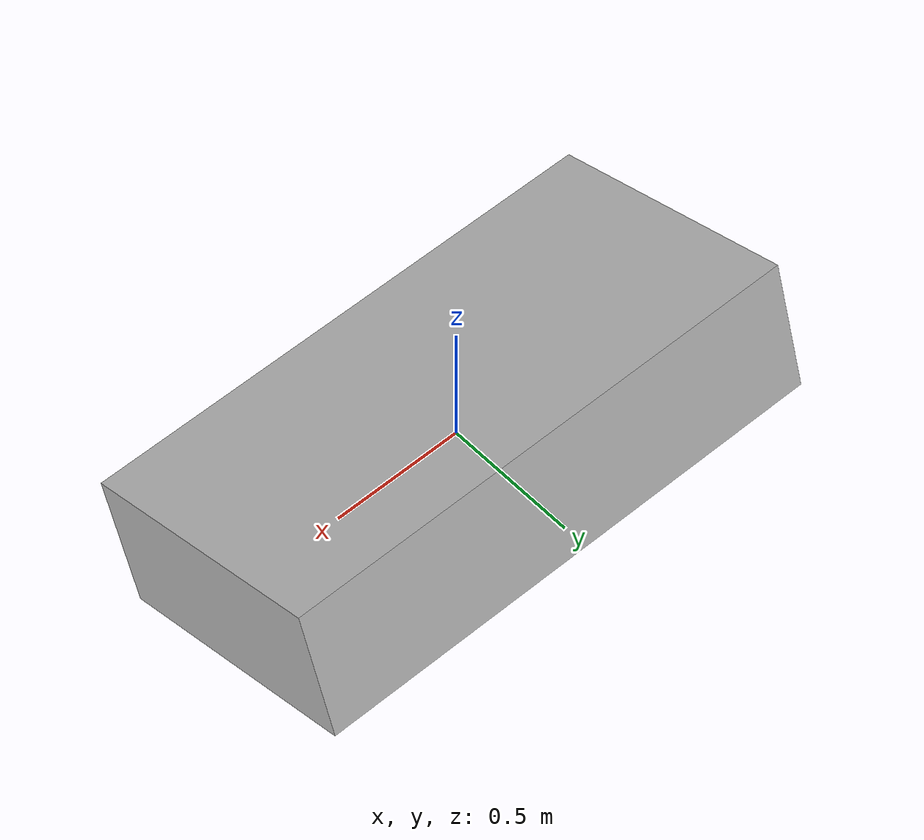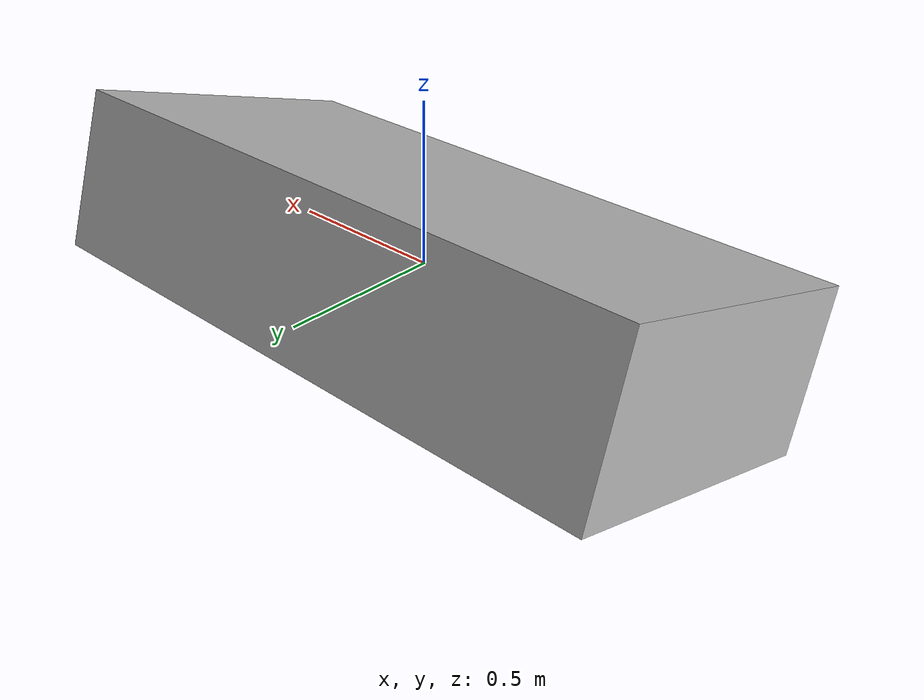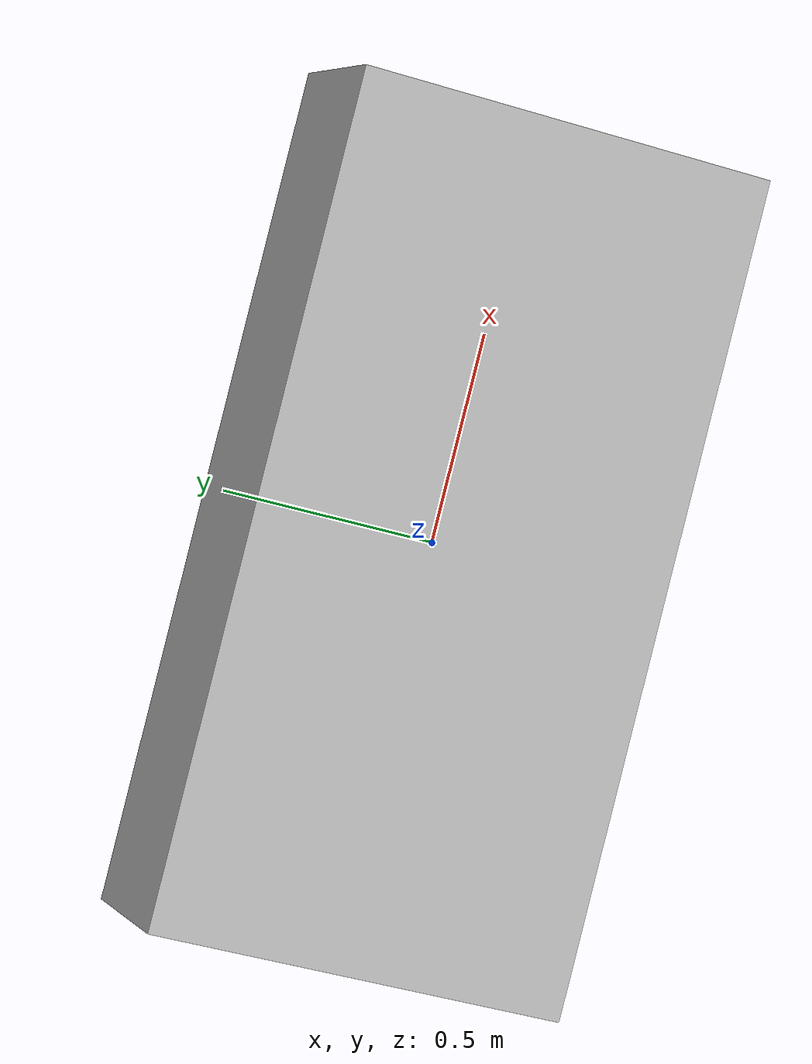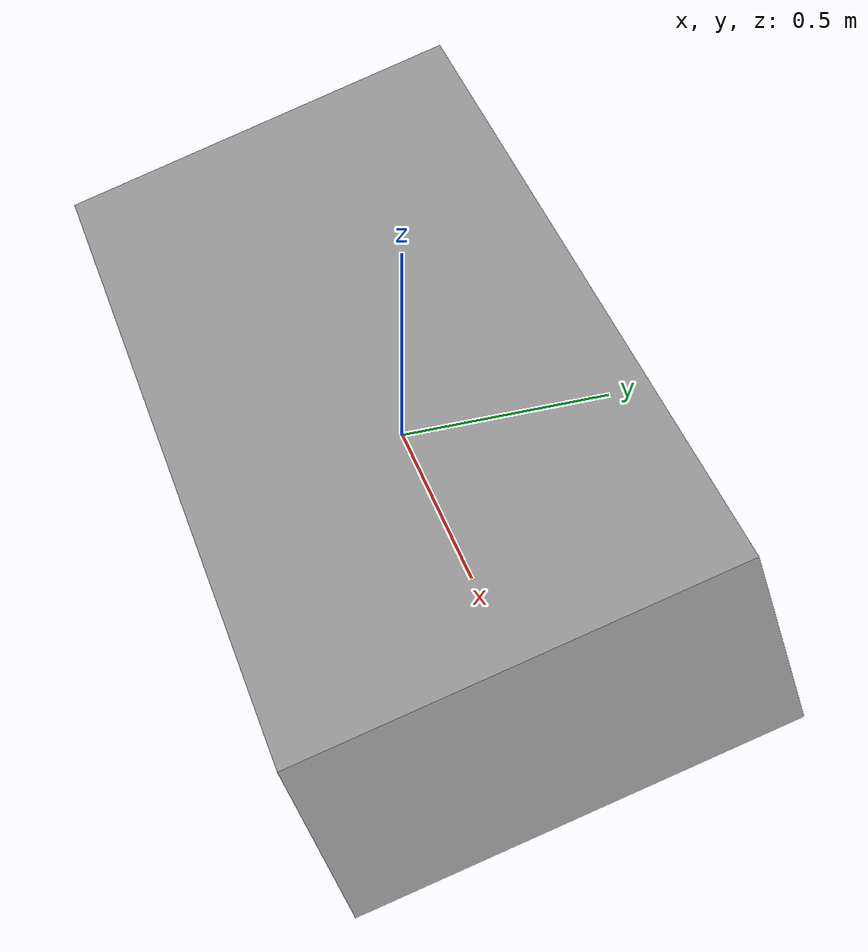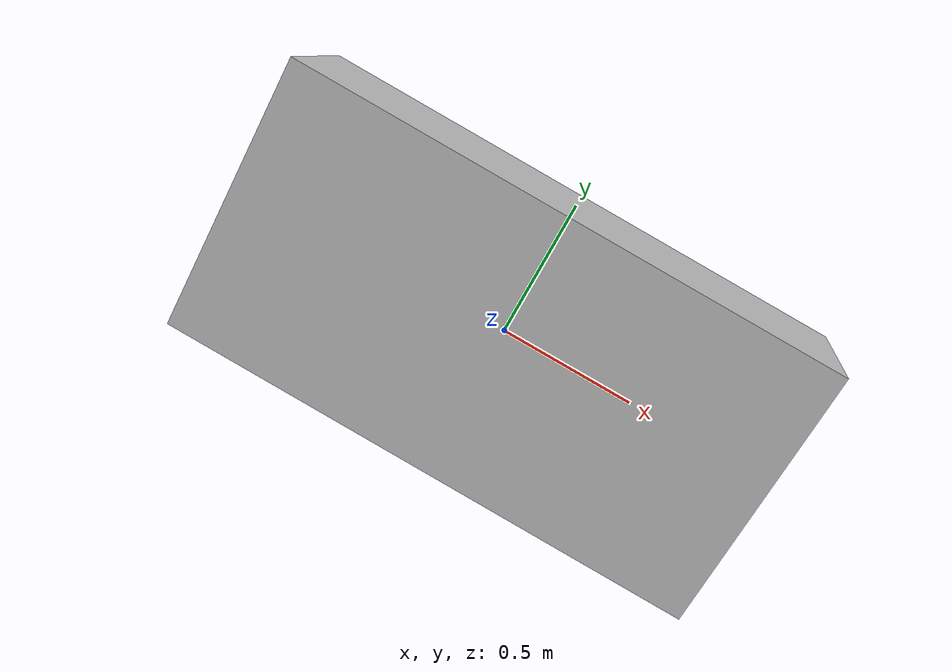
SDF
<?xml version="1.0" ?>
<sdf version="1.6">
  <world name="buoyancy_surface_righting">
    <physics name="1ms" type="ode">
      <max_step_size>0.001</max_step_size>
      <real_time_factor>0</real_time_factor>
    </physics>
    <plugin
      filename="gz-sim-physics-system"
      name="gz::sim::systems::Physics">
    </plugin>
    <plugin
      filename="gz-sim-scene-broadcaster-system"
      name="gz::sim::systems::SceneBroadcaster">
    </plugin>
    <plugin
      filename="gz-sim-buoyancy-system"
      name="gz::sim::systems::Buoyancy">
      <graded_buoyancy>
        <default_density>1000</default_density>
        <density_change>
          <above_depth>0</above_depth>
          <density>1</density>
        </density_change>
      </graded_buoyancy>
    </plugin>

    <!-- 2 x 1 x 0.5 box, mass = half its displacement (500 kg), so the
         waterline passes through its centre. Heeled 0.3 rad. -->
    <model name="box_vessel">
      <pose>0 0 0 0.3 0 0</pose>
      <link name="body">
        <inertial>
          <mass>500</mass>
          <inertia>
            <ixx>52.083</ixx>
            <iyy>177.083</iyy>
            <izz>208.333</izz>
            <ixy>0</ixy>
            <ixz>0</ixz>
            <iyz>0</iyz>
          </inertia>
        </inertial>
        <collision name="collision">
          <geometry>
            <box><size>2 1 0.5</size></box>
          </geometry>
        </collision>
        <visual name="visual">
          <geometry>
            <box><size>2 1 0.5</size></box>
          </geometry>
        </visual>
      </link>
    </model>
  </world>
</sdf>
